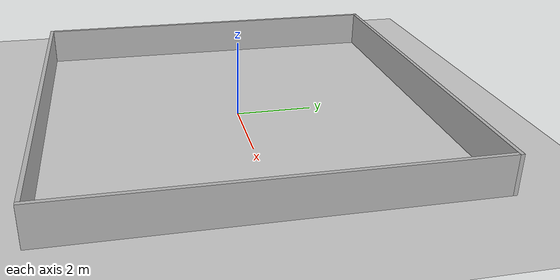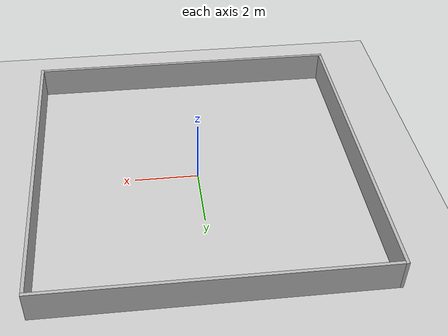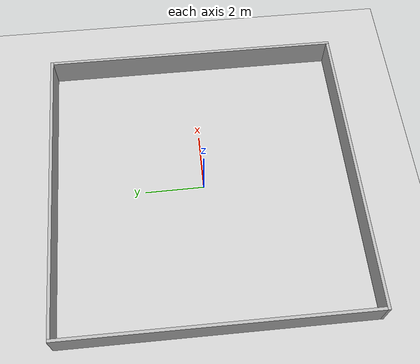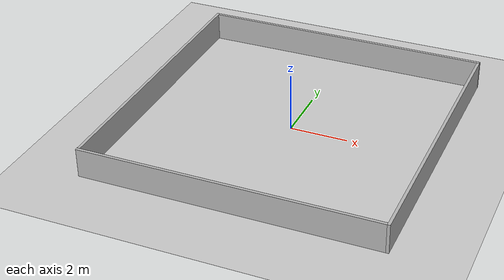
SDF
<?xml version="1.0" ?>
<sdf version='1.6'>
  <world name='default'>

    <include>
      <uri>model://ground_plane</uri>
    </include>

    <!-- Global light source -->
    <include>
      <uri>model://sun</uri>
    </include>

    <model name="wall1">
      <pose>0.05 5.05 0.5 0 0 0</pose>
      <static>true</static>
      <link name="link">
        <inertial>
          <mass>1.0</mass>
          <inertia> <!-- inertias are tricky to compute -->
            <!-- http://gazebosim.org/tutorials?tut=inertia&cat=build_robot -->
            <ixx>0.083</ixx>       <!-- for a box: ixx = 0.083 * mass * (y*y + z*z) -->
            <ixy>0.0</ixy>         <!-- for a box: ixy = 0 -->
            <ixz>0.0</ixz>         <!-- for a box: ixz = 0 -->
            <iyy>0.083</iyy>       <!-- for a box: iyy = 0.083 * mass * (x*x + z*z) -->
            <iyz>0.0</iyz>         <!-- for a box: iyz = 0 -->
            <izz>0.083</izz>       <!-- for a box: izz = 0.083 * mass * (x*x + y*y) -->
          </inertia>
        </inertial>
        <collision name="collision">
          <geometry>
            <box>
              <size>10.1 0.1 1</size>
            </box>
          </geometry>
        </collision>
        <visual name="visual">
          <geometry>
            <box>
              <size>10.1 0.1 1</size>
            </box>
          </geometry>
        </visual>
      </link>
    </model>

    <model name="wall2">
      <pose>5.05 -0.05 0.5 0 0 -1.5708</pose>
      <static>true</static>
      <link name="link">
        <inertial>
          <mass>1.0</mass>
          <inertia> <!-- inertias are tricky to compute -->
            <!-- http://gazebosim.org/tutorials?tut=inertia&cat=build_robot -->
            <ixx>0.083</ixx>       <!-- for a box: ixx = 0.083 * mass * (y*y + z*z) -->
            <ixy>0.0</ixy>         <!-- for a box: ixy = 0 -->
            <ixz>0.0</ixz>         <!-- for a box: ixz = 0 -->
            <iyy>0.083</iyy>       <!-- for a box: iyy = 0.083 * mass * (x*x + z*z) -->
            <iyz>0.0</iyz>         <!-- for a box: iyz = 0 -->
            <izz>0.083</izz>       <!-- for a box: izz = 0.083 * mass * (x*x + y*y) -->
          </inertia>
        </inertial>
        <collision name="collision">
          <geometry>
            <box>
              <size>10.1 0.1 1</size>
            </box>
          </geometry>
        </collision>
        <visual name="visual">
          <geometry>
            <box>
              <size>10.1 0.1 1</size>
            </box>
          </geometry>
        </visual>
      </link>
    </model>

    <model name="wall3">
      <pose>-0.05 -5.05 0.5 0 0 0</pose>
      <static>true</static>
      <link name="link">
        <inertial>
          <mass>1.0</mass>
          <inertia> <!-- inertias are tricky to compute -->
            <!-- http://gazebosim.org/tutorials?tut=inertia&cat=build_robot -->
            <ixx>0.083</ixx>       <!-- for a box: ixx = 0.083 * mass * (y*y + z*z) -->
            <ixy>0.0</ixy>         <!-- for a box: ixy = 0 -->
            <ixz>0.0</ixz>         <!-- for a box: ixz = 0 -->
            <iyy>0.083</iyy>       <!-- for a box: iyy = 0.083 * mass * (x*x + z*z) -->
            <iyz>0.0</iyz>         <!-- for a box: iyz = 0 -->
            <izz>0.083</izz>       <!-- for a box: izz = 0.083 * mass * (x*x + y*y) -->
          </inertia>
        </inertial>
        <collision name="collision">
          <geometry>
            <box>
              <size>10.1 0.1 1</size>
            </box>
          </geometry>
        </collision>
        <visual name="visual">
          <geometry>
            <box>
              <size>10.1 0.1 1</size>
            </box>
          </geometry>
        </visual>
      </link>
    </model>

    <model name="wall4">
      <pose>-5.05 0.05 0.5 0 0 -1.5708</pose>
      <static>true</static>
      <link name="link">
        <inertial>
          <mass>1.0</mass>
          <inertia> <!-- inertias are tricky to compute -->
            <!-- http://gazebosim.org/tutorials?tut=inertia&cat=build_robot -->
            <ixx>0.083</ixx>       <!-- for a box: ixx = 0.083 * mass * (y*y + z*z) -->
            <ixy>0.0</ixy>         <!-- for a box: ixy = 0 -->
            <ixz>0.0</ixz>         <!-- for a box: ixz = 0 -->
            <iyy>0.083</iyy>       <!-- for a box: iyy = 0.083 * mass * (x*x + z*z) -->
            <iyz>0.0</iyz>         <!-- for a box: iyz = 0 -->
            <izz>0.083</izz>       <!-- for a box: izz = 0.083 * mass * (x*x + y*y) -->
          </inertia>
        </inertial>
        <collision name="collision">
          <geometry>
            <box>
              <size>10.1 0.1 1</size>
            </box>
          </geometry>
        </collision>
        <visual name="visual">
          <geometry>
            <box>
              <size>10.1 0.1 1</size>
            </box>
          </geometry>
        </visual>
      </link>
    </model>

    <gui fullscreen='0'>
      <camera name='user_camera'>
        <pose>-11.3973 4.43088 7.49038 -0 0.621797 -0.403799</pose>
        <view_controller>orbit</view_controller>
        <projection_type>perspective</projection_type>
      </camera>
    </gui>

  </world>
</sdf>
